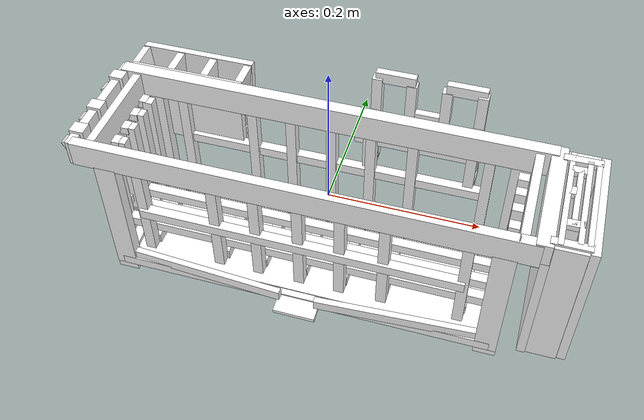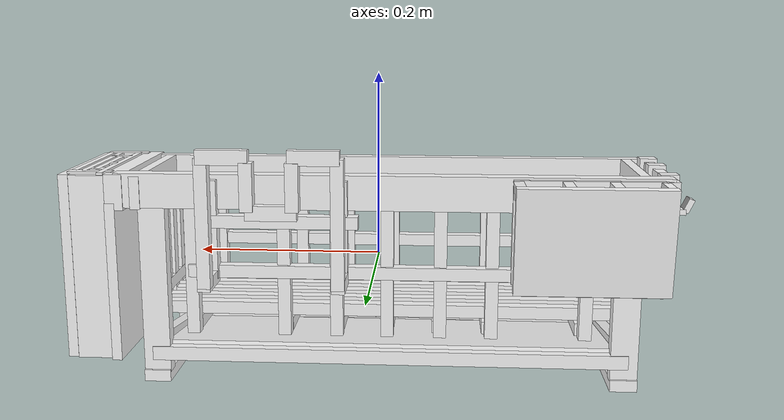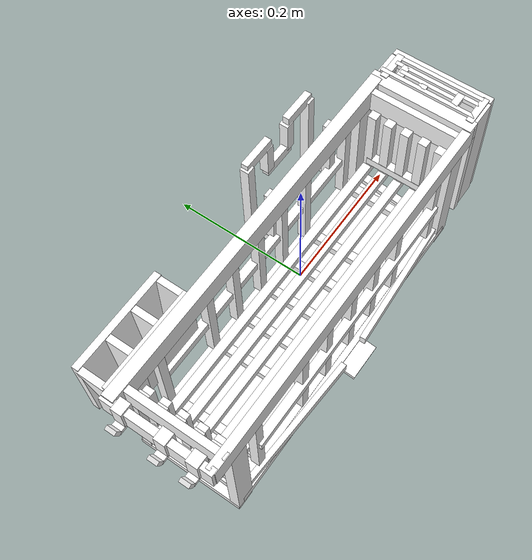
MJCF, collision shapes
<?xml version='1.0' encoding='UTF-8'?>
<mujoco model="model">
  <option timestep="0.002" gravity="0.0 0.0 -9.81"/>
  <compiler angle="radian"/>
  <asset>
    <mesh file="visual/DishRack049.obj" name="DishRack049_vis"/>
    <texture file="visual/T_BC001.png" name="DishRack049_material" type="2d"/>
    <material name="DishRack049_material" rgba="1 1 1 1.0" texture="DishRack049_material" shininess="0.4472135901451111" specular="0.3103448502657381"/>
  </asset>
  <default>
    <default class="visual">
      <geom conaffinity="0" contype="0" group="1" type="mesh"/>
    </default>
    <default class="collision">
      <geom group="0" rgba="1 1 1 0.25" density="1.0" solref="0.004 1" solimp="0.998 0.998 0.001"/>
    </default>
    <default class="spawn">
      <geom group="0" rgba="1 1 1 0.5" contype="0" conaffinity="0"/>
      <site group="0" rgba="1 1 1 0.5"/>
    </default>
    <default class="region">
      <geom group="1" conaffinity="0" contype="0" rgba="0 1 0 0" mass="0"/>
    </default>
  </default>
  <worldbody>
    <body>
      <body name="object">
        <geom mesh="DishRack049_vis" type="mesh" solimp="0.998 0.998 0.001" solref="0.001 1" friction="0.95 0.3 0.1" class="visual" material="DishRack049_material"/>
        <geom type="box" pos="-0.01276651 -0.01339543 -0.10084253" size="0.24850596487522125 0.07287391275167465 0.004058182239532471" quat="0.9980186820030212 0.06291796267032623 1.3970602435626582e-17 8.165786671135033e-25" class="collision"/>
        <geom type="box" pos="-0.01276651 -0.09706467 -0.11234701" size="0.028463659808039665 0.023307431489229202 0.0029453998431563377" quat="0.9980186820030212 0.06291796267032623 1.3970602435626582e-17 8.165786671135033e-25" class="collision"/>
        <geom type="box" pos="-0.14562054 -0.09409855 -0.10277487" size="0.108038030564785 0.004422761965543032 0.007104186341166496" quat="0.9996175169944763 3.8559722187801227e-19 1.3937578076851015e-17 -0.027655424550175667" class="collision"/>
        <geom type="box" pos="0.11757538 -0.09409855 -0.10277487" size="0.108038030564785 0.004422761965543032 0.007104186341166496" quat="0.9996175169944763 -3.8559714432982984e-19 1.393757642248979e-17 0.027655422687530518" class="collision"/>
        <geom type="box" pos="-0.26467249 -0.08768679 -0.02949632" size="0.014381621964275837 0.007792153395712376 0.09142327308654785" quat="1.0 0.0 0.0 0.0" class="collision"/>
        <geom type="box" pos="-0.26467249 0.06057671 -0.02949632" size="0.014381621964275837 0.007792153395712376 0.09142327308654785" quat="1.0 0.0 0.0 0.0" class="collision"/>
        <geom type="box" pos="-0.26467249 -0.01156271 -0.12477255" size="0.014381542801856995 0.08287032693624496 0.006336171645671129" quat="1.0 0.0 0.0 0.0" class="collision"/>
        <geom type="box" pos="0.23770064 -0.08768679 -0.02949632" size="0.014381621964275837 0.007792153395712376 0.09142327308654785" quat="1.0 0.0 0.0 0.0" class="collision"/>
        <geom type="box" pos="0.23770064 0.06057671 -0.02949632" size="0.014381621964275837 0.007792153395712376 0.09142327308654785" quat="1.0 0.0 0.0 0.0" class="collision"/>
        <geom type="box" pos="0.23770064 -0.01156271 -0.12477255" size="0.014381545595824718 0.08287034183740616 0.006336171645671129" quat="1.0 0.0 0.0 0.0" class="collision"/>
        <geom type="box" pos="-0.01276651 -0.08657164 -0.00555174" size="0.006751105189323425 0.006751105189323425 0.07051561772823334" quat="1.0 0.0 0.0 0.0" class="collision"/>
        <geom type="box" pos="0.04102316 -0.08657164 -0.00555174" size="0.006751105189323425 0.006751105189323425 0.07051561772823334" quat="1.0 0.0 0.0 0.0" class="collision"/>
        <geom type="box" pos="0.09704789 -0.08657164 -0.00555174" size="0.006751105189323425 0.006751105189323425 0.07051561772823334" quat="1.0 0.0 0.0 0.0" class="collision"/>
        <geom type="box" pos="-0.06895874 -0.08657164 -0.00555174" size="0.006751105189323425 0.006751105189323425 0.07051561772823334" quat="1.0 0.0 0.0 0.0" class="collision"/>
        <geom type="box" pos="-0.12337314 -0.08657164 -0.00555174" size="0.006751105189323425 0.006751105189323425 0.07051561772823334" quat="1.0 0.0 0.0 0.0" class="collision"/>
        <geom type="box" pos="-0.22246262 -0.08657164 -0.00555174" size="0.006751105189323425 0.006751105189323425 0.07051561772823334" quat="1.0 0.0 0.0 0.0" class="collision"/>
        <geom type="box" pos="0.19639462 -0.08657164 -0.00555174" size="0.006751105189323425 0.006751105189323425 0.07051561772823334" quat="1.0 0.0 0.0 0.0" class="collision"/>
        <geom type="box" pos="-0.01276651 0.06091344 -0.00555174" size="0.006751105189323425 0.006751105189323425 0.07051561772823334" quat="1.0 0.0 0.0 0.0" class="collision"/>
        <geom type="box" pos="0.04102316 0.06091344 -0.00555174" size="0.006751105189323425 0.006751105189323425 0.07051561772823334" quat="1.0 0.0 0.0 0.0" class="collision"/>
        <geom type="box" pos="0.09704789 0.06091344 -0.00555174" size="0.006751105189323425 0.006751105189323425 0.07051561772823334" quat="1.0 0.0 0.0 0.0" class="collision"/>
        <geom type="box" pos="-0.06895874 0.06091344 -0.00555174" size="0.006751105189323425 0.006751105189323425 0.07051561772823334" quat="1.0 0.0 0.0 0.0" class="collision"/>
        <geom type="box" pos="-0.12337314 0.06091344 -0.00555174" size="0.006751105189323425 0.006751105189323425 0.07051561772823334" quat="1.0 0.0 0.0 0.0" class="collision"/>
        <geom type="box" pos="-0.22246262 0.06091344 -0.00555174" size="0.006751105189323425 0.006751105189323425 0.07051561772823334" quat="1.0 0.0 0.0 0.0" class="collision"/>
        <geom type="box" pos="0.19639462 0.06091344 -0.00555174" size="0.006751105189323425 0.006751105189323425 0.07051561772823334" quat="1.0 0.0 0.0 0.0" class="collision"/>
        <geom type="box" pos="-0.01333452 -0.09081159 -0.00555174" size="0.21233253180980682 0.006751105189323425 0.006751121021807194" quat="1.0 0.0 0.0 0.0" class="collision"/>
        <geom type="box" pos="-0.01333452 0.06448144 -0.00555174" size="0.21233253180980682 0.006751105189323425 0.006751121021807194" quat="1.0 0.0 0.0 0.0" class="collision"/>
        <geom type="box" pos="-0.01333452 -0.06758460 -0.05340290" size="0.2557050287723541 0.006751105189323425 0.006751192733645439" quat="1.0 0.0 0.0 0.0" class="collision"/>
        <geom type="box" pos="-0.01333452 -0.04098711 -0.05340290" size="0.2557050287723541 0.006751105189323425 0.0067511918023228645" quat="1.0 0.0 0.0 0.0" class="collision"/>
        <geom type="box" pos="-0.01333452 -0.01316370 -0.05340290" size="0.2557050287723541 0.006751105189323425 0.00675119087100029" quat="1.0 0.0 0.0 0.0" class="collision"/>
        <geom type="box" pos="-0.01333452 0.01341818 -0.05340290" size="0.2557050287723541 0.006751105189323425 0.006751189939677715" quat="1.0 0.0 0.0 0.0" class="collision"/>
        <geom type="box" pos="-0.01333452 0.03998478 -0.05340290" size="0.2557050287723541 0.006751105189323425 0.006751189008355141" quat="1.0 0.0 0.0 0.0" class="collision"/>
        <geom type="box" pos="-0.22004643 -0.01448876 -0.06932026" size="0.0067511084489524364 0.06631774455308914 0.006751105189323425" quat="1.0 0.0 0.0 0.0" class="collision"/>
        <geom type="box" pos="-0.12065306 -0.01448876 -0.06932026" size="0.0067511084489524364 0.06631774455308914 0.006751105189323425" quat="1.0 0.0 0.0 0.0" class="collision"/>
        <geom type="box" pos="-0.06739960 -0.01448876 -0.06932026" size="0.0067511084489524364 0.06631774455308914 0.006751105189323425" quat="1.0 0.0 0.0 0.0" class="collision"/>
        <geom type="box" pos="-0.01212000 -0.01448876 -0.06932026" size="0.0067511084489524364 0.06631774455308914 0.006751105189323425" quat="1.0 0.0 0.0 0.0" class="collision"/>
        <geom type="box" pos="0.04175605 -0.01448876 -0.06932026" size="0.0067511084489524364 0.06631774455308914 0.006751105189323425" quat="1.0 0.0 0.0 0.0" class="collision"/>
        <geom type="box" pos="0.09697744 -0.01448876 -0.06932026" size="0.0067511084489524364 0.06631774455308914 0.006751105189323425" quat="1.0 0.0 0.0 0.0" class="collision"/>
        <geom type="box" pos="0.19777730 -0.01448876 -0.06932026" size="0.0067511084489524364 0.06631774455308914 0.006751105189323425" quat="1.0 0.0 0.0 0.0" class="collision"/>
        <geom type="box" pos="-0.26532334 -0.06789147 0.00445331" size="0.006751105189323425 0.006751105189323425 0.060626816004514694" quat="1.0 0.0 0.0 0.0" class="collision"/>
        <geom type="box" pos="-0.26532334 -0.04149894 0.00445331" size="0.006751105189323425 0.006751105189323425 0.0606268085539341" quat="1.0 0.0 0.0 0.0" class="collision"/>
        <geom type="box" pos="-0.26532334 -0.01298164 0.00445331" size="0.006751105189323425 0.006751105189323425 0.0606268048286438" quat="1.0 0.0 0.0 0.0" class="collision"/>
        <geom type="box" pos="-0.26532334 0.01429998 0.00445331" size="0.006751105189323425 0.006751105189323425 0.0606267973780632" quat="1.0 0.0 0.0 0.0" class="collision"/>
        <geom type="box" pos="-0.26532334 0.04027402 0.00445331" size="0.006751105189323425 0.006751105189323425 0.060626789927482605" quat="1.0 0.0 0.0 0.0" class="collision"/>
        <geom type="box" pos="-0.26101510 -0.01448876 -0.09650535" size="0.006751106120646 0.006751105189323425 0.06941815465688705" quat="0.5355445742607117 -0.4617273211479187 0.46172741055488586 0.5355443358421326" class="collision"/>
        <geom type="box" pos="0.24095768 -0.06789147 0.00445331" size="0.006751105189323425 0.006751105189323425 0.06010463088750839" quat="1.0 0.0 0.0 0.0" class="collision"/>
        <geom type="box" pos="0.24095768 -0.04149894 0.00445331" size="0.006751105189323425 0.006751105189323425 0.06010463088750839" quat="1.0 0.0 0.0 0.0" class="collision"/>
        <geom type="box" pos="0.24095768 -0.01298164 0.00445331" size="0.006751105189323425 0.006751105189323425 0.06010463088750839" quat="1.0 0.0 0.0 0.0" class="collision"/>
        <geom type="box" pos="0.24095768 0.01429998 0.00445331" size="0.006751105189323425 0.006751105189323425 0.06010463088750839" quat="1.0 0.0 0.0 0.0" class="collision"/>
        <geom type="box" pos="0.24095768 0.04027402 0.00445331" size="0.006751105189323425 0.006751105189323425 0.06010463088750839" quat="1.0 0.0 0.0 0.0" class="collision"/>
        <geom type="box" pos="0.24044079 -0.01448876 -0.03671034" size="0.006751107517629862 0.05635824427008629 0.006751105654984713" quat="1.0 0.0 0.0 0.0" class="collision"/>
        <geom type="box" pos="-0.28300875 -0.01156271 0.07812738" size="0.005444996990263462 0.08287054300308228 0.017623910680413246" quat="1.0 0.0 0.0 0.0" class="collision"/>
        <geom type="box" pos="-0.30578455 -0.01156271 0.07812738" size="0.005754013080149889 0.08287078142166138 0.017623962834477425" quat="1.0 0.0 0.0 0.0" class="collision"/>
        <geom type="box" pos="0.27675241 -0.01156271 0.07812738" size="0.00976930744946003 0.08287055045366287 0.019316354766488075" quat="1.0 0.0 0.0 0.0" class="collision"/>
        <geom type="box" pos="0.25397661 -0.01156271 0.07812738" size="0.005444996990263462 0.08287055790424347 0.017623914405703545" quat="1.0 0.0 0.0 0.0" class="collision"/>
        <geom type="box" pos="-0.01530356 -0.08861081 0.07812738" size="0.2917134463787079 0.0068639651872217655 0.017623962834477425" quat="1.0 0.0 0.0 0.0" class="collision"/>
        <geom type="box" pos="-0.01530356 0.06171628 0.08036691" size="0.2917134463787079 0.008930445648729801 0.018451256677508354" quat="1.0 0.0 0.0 0.0" class="collision"/>
        <geom type="box" pos="0.23422439 -0.01448876 -0.09650535" size="0.006751106120646 0.006751105189323425 0.06941815465688705" quat="0.5355445742607117 -0.4617273211479187 0.46172741055488586 0.5355443358421326" class="collision"/>
        <geom type="box" pos="0.28174630 -0.01156271 -0.02066485" size="0.005444996990263462 0.08287078142166138 0.0870889276266098" quat="1.0 0.0 0.0 0.0" class="collision"/>
        <geom type="box" pos="0.33174744 -0.01275292 -0.00519269" size="0.005444996990263462 0.07910274714231491 0.1013742983341217" quat="1.0 0.0 0.0 0.0" class="collision"/>
        <geom type="box" pos="0.30649933 -0.08768679 -0.00559869" size="0.019332783296704292 0.0057994294911623 0.1012195572257042" quat="1.0 0.0 0.0 0.0" class="collision"/>
        <geom type="box" pos="0.30649933 0.06247176 -0.00559869" size="0.019332783296704292 0.004916951060295105 0.1012190729379654" quat="1.0 0.0 0.0 0.0" class="collision"/>
        <geom type="box" pos="0.29261458 -0.01156271 0.09470577" size="0.0033425292931497097 0.07614630460739136 0.0037443500477820635" quat="1.0 0.0 0.0 0.0" class="collision"/>
        <geom type="box" pos="0.30404818 -0.00709250 0.09470577" size="0.0033425292931497097 0.04685233533382416 0.003744341665878892" quat="1.0 0.0 0.0 0.0" class="collision"/>
        <geom type="box" pos="0.31408700 -0.01396730 0.09470577" size="0.0033425292931497097 0.06708379089832306 0.0037443500477820635" quat="1.0 0.0 0.0 0.0" class="collision"/>
        <geom type="box" pos="0.32472035 -0.01396730 0.09470577" size="0.0033425292931497097 0.06708379834890366 0.0037443500477820635" quat="1.0 0.0 0.0 0.0" class="collision"/>
        <geom type="box" pos="0.30521697 -0.05159773 0.09470577" size="0.011619058437645435 0.005373565945774317 0.0037443421315401793" quat="1.0 0.0 0.0 0.0" class="collision"/>
        <geom type="box" pos="0.29796729 -0.00001633 0.09470577" size="0.0038719377480447292 0.006352491211146116 0.0037443500477820635" quat="1.0 0.0 0.0 0.0" class="collision"/>
        <geom type="box" pos="0.30521697 0.03628202 0.09470577" size="0.011619058437645435 0.005373564548790455 0.0037443425972014666" quat="1.0 0.0 0.0 0.0" class="collision"/>
        <geom type="box" pos="0.30521697 0.05419759 0.09470577" size="0.023860741406679153 0.005373544525355101 0.0037443500477820635" quat="1.0 0.0 0.0 0.0" class="collision"/>
        <geom type="box" pos="0.30521697 -0.08346289 0.09470577" size="0.023860737681388855 0.005373544525355101 0.0037443500477820635" quat="1.0 0.0 0.0 0.0" class="collision"/>
        <geom type="box" pos="0.17235672 0.07106300 0.04076212" size="0.006751105189323425 0.006751105189323425 0.052856750786304474" quat="1.0 0.0 0.0 0.0" class="collision"/>
        <geom type="box" pos="0.17235672 0.10819580 0.05478583" size="0.006751105189323425 0.006751105189323425 0.06760923564434052" quat="1.0 0.0 0.0 0.0" class="collision"/>
        <geom type="box" pos="0.03492895 0.10819580 0.05478583" size="0.006751105189323425 0.006751105189323425 0.06760923564434052" quat="1.0 0.0 0.0 0.0" class="collision"/>
        <geom type="box" pos="0.03501172 0.07106300 0.04076212" size="0.006751105189323425 0.006751105189323425 0.05285673215985298" quat="1.0 0.0 0.0 0.0" class="collision"/>
        <geom type="box" pos="0.17285141 0.08980306 -0.00990974" size="0.006751095410436392 0.023259203881025314 0.006751087494194508" quat="1.0 0.0 0.0 0.0" class="collision"/>
        <geom type="box" pos="0.03470068 0.08980306 -0.00990974" size="0.006751095876097679 0.023259205743670464 0.006751087959855795" quat="1.0 0.0 0.0 0.0" class="collision"/>
        <geom type="box" pos="0.12635934 0.11042286 0.09339642" size="0.006751105189323425 0.006751105189323425 0.024922480806708336" quat="1.0 0.0 0.0 0.0" class="collision"/>
        <geom type="box" pos="0.08013377 0.11042286 0.09339642" size="0.006751105189323425 0.006751105189323425 0.024922480806708336" quat="1.0 0.0 0.0 0.0" class="collision"/>
        <geom type="box" pos="0.15073541 0.10996240 0.12330325" size="0.026445794850587845 0.005173463840037584 0.0076719061471521854" quat="1.0 0.0 0.0 0.0" class="collision"/>
        <geom type="box" pos="0.05841086 0.10996240 0.12330325" size="0.026445794850587845 0.005173464305698872 0.0076719061471521854" quat="1.0 0.0 0.0 0.0" class="collision"/>
        <geom type="box" pos="0.10208705 0.10996240 0.06691836" size="0.026445794850587845 0.005173464771360159 0.0076719061471521854" quat="1.0 0.0 0.0 0.0" class="collision"/>
        <geom type="box" pos="-0.01333452 0.06230118 -0.09954008" size="0.25570449233055115 0.007572242058813572 0.00757226999849081" quat="1.0 0.0 0.0 0.0" class="collision"/>
        <geom type="box" pos="-0.01333452 -0.08891123 -0.11404567" size="0.2557050287723541 0.006751105189323425 0.006751141510903835" quat="1.0 0.0 0.0 0.0" class="collision"/>
        <geom type="box" pos="-0.22065982 0.11324650 0.04164867" size="0.0788024365901947 0.005405785981565714 0.055495280772447586" quat="0.999214231967926 -0.039634235203266144 -0.0 0.0" class="collision"/>
        <geom type="box" pos="-0.15275064 0.09356680 0.04164867" size="0.00525560462847352 0.020614013075828552 0.05452346056699753" quat="0.9987892508506775 -1.4417422969389515e-15 0.04919398948550224 6.609647051902812e-09" class="collision"/>
        <geom type="box" pos="-0.19697970 0.09356680 0.04164867" size="0.00525559950619936 0.020614013075828552 0.05452345684170723" quat="1.0 0.0 0.0 0.0" class="collision"/>
        <geom type="box" pos="-0.24452706 0.09356680 0.04164867" size="0.00525559950619936 0.020614013075828552 0.05452345684170723" quat="1.0 0.0 0.0 0.0" class="collision"/>
        <geom type="box" pos="-0.28974593 0.09356680 0.04164867" size="0.00525560462847352 0.020614013075828552 0.05452345684170723" quat="0.9982333183288574 1.828367415218743e-15 -0.05941568687558174 -7.983020466895141e-09" class="collision"/>
        <geom type="box" pos="-0.22065982 0.09133735 -0.00898944" size="0.07059111446142197 0.022706585004925728 0.005442446563392878" quat="1.0 0.0 0.0 0.0" class="collision"/>
        <geom type="box" pos="-0.27030385 -0.01448876 -0.03671034" size="0.006751107517629862 0.05635824427008629 0.006751105654984713" quat="1.0 0.0 0.0 0.0" class="collision"/>
        <geom type="box" pos="-0.30506131 0.04194526 0.08206020" size="0.009562445804476738 0.008139065466821194 0.017623990774154663" quat="1.0 0.0 0.0 0.0" class="collision"/>
        <geom type="box" pos="-0.30506131 -0.02134982 0.08206020" size="0.009562424384057522 0.008410046808421612 0.017623962834477425" quat="1.0 0.0 0.0 0.0" class="collision"/>
        <geom type="box" pos="-0.30506131 -0.06779140 0.08206020" size="0.009562430903315544 0.0087113743647933 0.017623962834477425" quat="1.0 0.0 0.0 0.0" class="collision"/>
        <geom type="box" pos="-0.31751418 0.04194526 0.06028042" size="0.00611052755266428 0.007515621371567249 0.0030590591486543417" quat="1.0 0.0 0.0 0.0" class="collision"/>
        <geom type="box" pos="-0.31751418 -0.02134982 0.06028042" size="0.006110528018325567 0.007515621371567249 0.0030590591486543417" quat="1.0 0.0 0.0 0.0" class="collision"/>
        <geom type="box" pos="-0.31751418 -0.06779140 0.06028042" size="0.0061105284839868546 0.007515621371567249 0.0030590591486543417" quat="1.0 0.0 0.0 0.0" class="collision"/>
        <geom type="box" pos="-0.32638463 0.04194526 0.06699371" size="0.007534949574619532 0.007515621371567249 0.0030590598471462727" quat="0.8434897661209106 0.0 0.5371452569961548 0.0" class="collision"/>
        <geom type="box" pos="-0.32638463 -0.02134982 0.06699371" size="0.007534949574619532 0.007515621371567249 0.0030590598471462727" quat="0.8434897661209106 0.0 0.5371452569961548 0.0" class="collision"/>
        <geom type="box" pos="-0.32638463 -0.06779140 0.06699371" size="0.007534949574619532 0.007515621371567249 0.0030590598471462727" quat="0.8434897661209106 0.0 0.5371452569961548 0.0" class="collision"/>
        <geom type="box" pos="0.09540232 0.07131682 0.04969264" size="0.07834768295288086 0.006751105189323425 0.006751110777258873" quat="1.0 0.0 0.0 0.0" class="collision"/>
        <geom type="box" pos="-0.22065982 0.07067636 0.04164867" size="0.07810680568218231 0.005718931555747986 0.05503933131694794" quat="1.0 0.0 0.0 0.0" class="collision"/>
        <geom type="box" pos="-0.27360144 0.04194526 0.05985976" size="0.0063567375764250755 0.007515626028180122 0.00530051626265049" quat="1.0 0.0 0.0 0.0" class="collision"/>
        <geom type="box" pos="-0.27360144 0.01374037 0.05985976" size="0.0063567375764250755 0.007515625096857548 0.00530051626265049" quat="1.0 0.0 0.0 0.0" class="collision"/>
        <geom type="box" pos="-0.27360144 -0.01326735 0.05985976" size="0.0063567375764250755 0.007515624165534973 0.00530051626265049" quat="1.0 0.0 0.0 0.0" class="collision"/>
        <geom type="box" pos="-0.27360144 -0.04141259 0.05985976" size="0.0063567375764250755 0.0075156232342123985 0.00530051626265049" quat="1.0 0.0 0.0 0.0" class="collision"/>
        <geom type="box" pos="-0.27360144 -0.06757831 0.05985976" size="0.0063567375764250755 0.007515622302889824 0.00530051626265049" quat="1.0 0.0 0.0 0.0" class="collision"/>
        <geom class="region" name="reg_int_0" type="box" pos="-0.012565435000000014 -0.013435699999999998 0.109674195" size="0.246222565 0.06633226 0.156851335"/>
        <geom size="0.33425488 0.12415181 0.13370195" pos="0.0 0.0 -0.0" name="reg_bbox" class="region" type="box" quat="1.0 0.0 0.0 0.0"/>
      </body>
    </body>
  </worldbody>
  <actuator/>
</mujoco>
